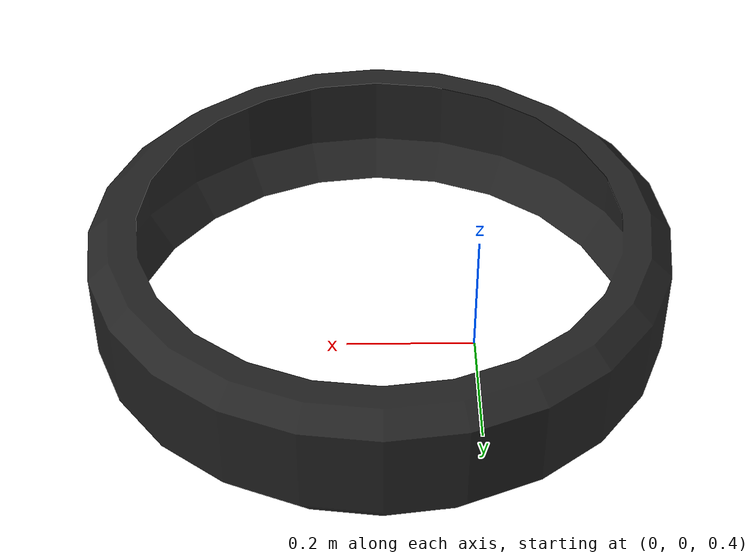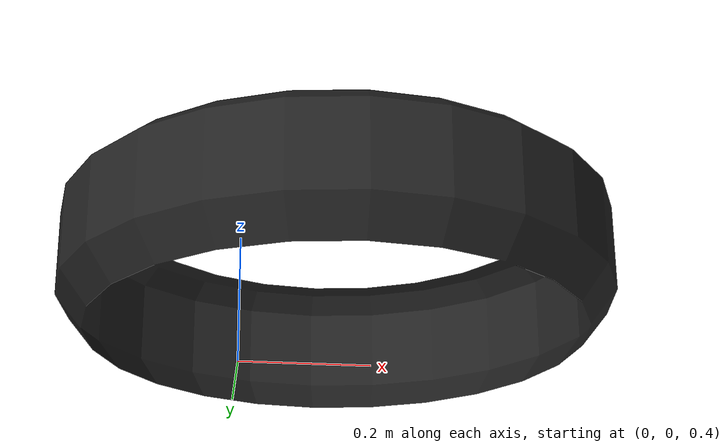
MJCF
<mujoco model="original-14">
  <default>
    <default class="visual">
      <geom group="2" type="mesh" contype="0" conaffinity="0"/>
    </default>
    <default class="collision">
      <geom group="3" type="mesh"/>
    </default>
  </default>
  <asset>
    <material name="material_0_0" specular="0.06666666666666667" shininess="0.03" rgba="0.13333333333333333 0.13333333333333333 0.13333333333333333 1"/>
    <mesh file="original-14.obj"/>
  </asset>
  <worldbody>
    <body name="original-14">
      <geom material="material_0_0" mesh="original-14" class="visual"/>
      <geom mesh="original-14" class="collision"/>
    </body>
  </worldbody>
</mujoco>
